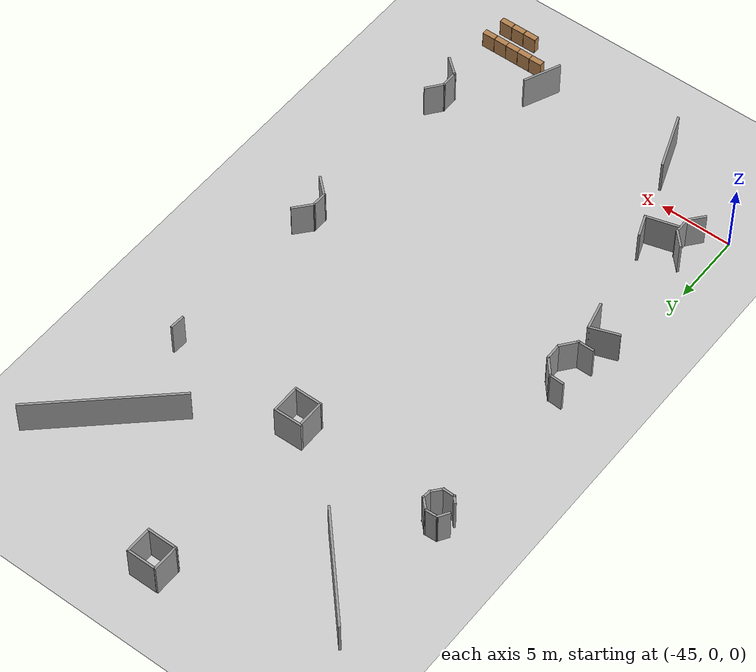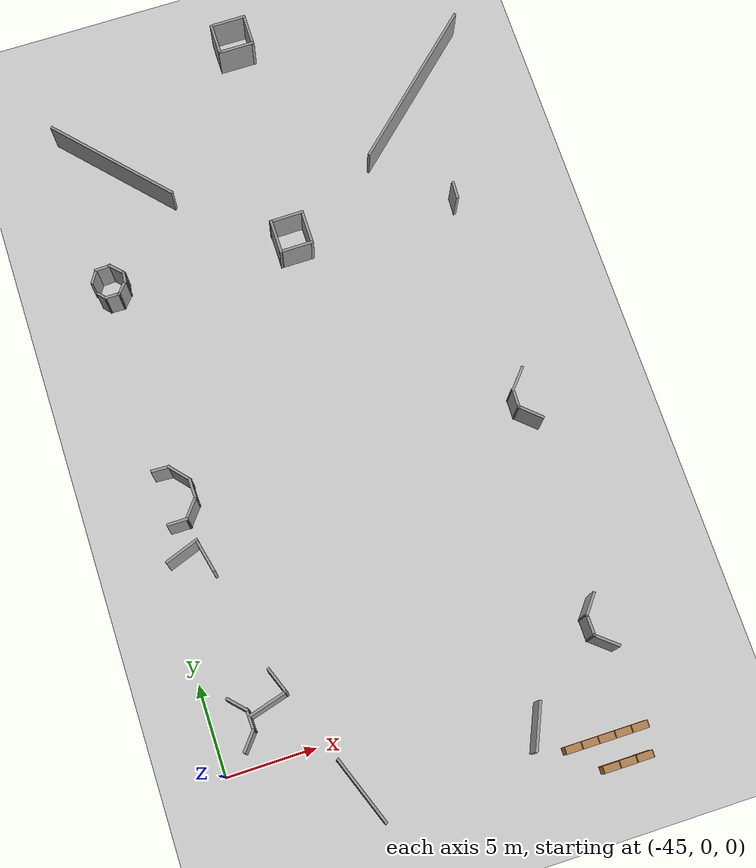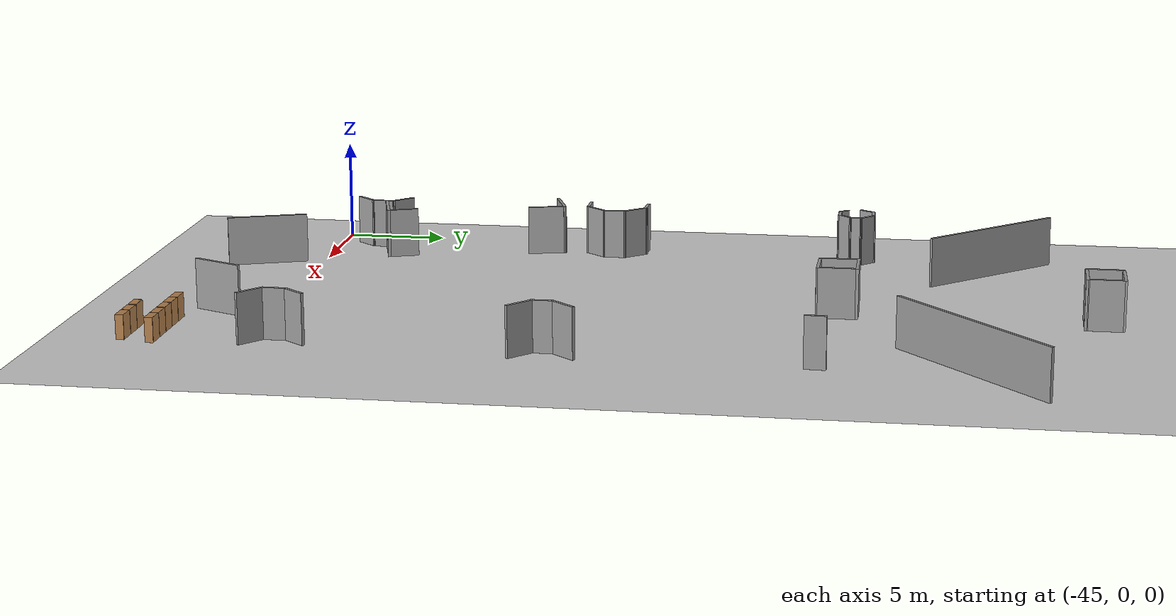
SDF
<sdf version="1.6">
 <world name="default">
  <model name="ground_plane">
   <static>1</static>
   <link name="link">
    <collision name="collision">
     <geometry><plane><normal>0 0 1</normal><size>100 100</size></plane></geometry>
     <surface><friction><ode><mu>100</mu><mu2>50</mu2></ode></friction></surface>
    </collision>
    <visual name="visual">
     <cast_shadows>0</cast_shadows>
     <geometry><plane><normal>0 0 1</normal><size>100 100</size></plane></geometry>
     <material>
      <script><uri>file://media/materials/scripts/gazebo.material</uri><name>Gazebo/Grey</name></script>
     </material>
    </visual>
   </link>
  </model>
  <model name="mall_new_reduce_size">
   <pose>-6.8092 7.5529 0 0 -0 0</pose>
   <link name="Wall_106">
    <collision name="Wall_106_Collision">
     <geometry><box><size>0.88293 0.15 2.5</size></box></geometry>
     <pose>0 0 1.25 0 -0 0</pose>
    </collision>
    <visual name="Wall_106_Visual">
     <pose>0 0 1.25 0 -0 0</pose>
     <geometry><box><size>0.88293 0.15 2.5</size></box></geometry>
     <material>
      <script><uri>file://media/materials/scripts/gazebo.material</uri><name>Gazebo/Grey</name></script>
      <ambient>1 1 1 1</ambient>
     </material>
     <meta><layer>0</layer></meta>
    </visual>
    <pose>-37.2247 20.3731 0 0 -0 1.00343</pose>
   </link>
   <link name="Wall_107">
    <collision name="Wall_107_Collision">
     <geometry><box><size>0.940533 0.15 2.5</size></box></geometry>
     <pose>0 0 1.25 0 -0 0</pose>
    </collision>
    <visual name="Wall_107_Visual">
     <pose>0 0 1.25 0 -0 0</pose>
     <geometry><box><size>0.940533 0.15 2.5</size></box></geometry>
     <material>
      <script><uri>file://media/materials/scripts/gazebo.material</uri><name>Gazebo/Grey</name></script>
      <ambient>1 1 1 1</ambient>
     </material>
     <meta><layer>0</layer></meta>
    </visual>
    <pose>-36.633 20.7072 0 0 -0 0.04939</pose>
   </link>
   <link name="Wall_108">
    <collision name="Wall_108_Collision">
     <geometry><box><size>1.04338 0.15 2.5</size></box></geometry>
     <pose>0 0 1.25 0 -0 0</pose>
    </collision>
    <visual name="Wall_108_Visual">
     <pose>0 0 1.25 0 -0 0</pose>
     <geometry><box><size>1.04338 0.15 2.5</size></box></geometry>
     <material>
      <script><uri>file://media/materials/scripts/gazebo.material</uri><name>Gazebo/Grey</name></script>
      <ambient>1 1 1 1</ambient>
     </material>
     <meta><layer>0</layer></meta>
    </visual>
    <pose>-35.9265 20.4122 0 0 -0 -0.780985</pose>
   </link>
   <link name="Wall_109">
    <collision name="Wall_109_Collision">
     <geometry><box><size>0.676427 0.15 2.5</size></box></geometry>
     <pose>0 0 1.25 0 -0 0</pose>
    </collision>
    <visual name="Wall_109_Visual">
     <pose>0 0 1.25 0 -0 0</pose>
     <geometry><box><size>0.676427 0.15 2.5</size></box></geometry>
     <material>
      <script><uri>file://media/materials/scripts/gazebo.material</uri><name>Gazebo/Grey</name></script>
      <ambient>1 1 1 1</ambient>
     </material>
     <meta><layer>0</layer></meta>
    </visual>
    <pose>-35.6455 19.8364 0 0 -0 -1.68757</pose>
   </link>
   <link name="Wall_110">
    <collision name="Wall_110_Collision">
     <geometry><box><size>0.945582 0.15 2.5</size></box></geometry>
     <pose>0 0 1.25 0 -0 0</pose>
    </collision>
    <visual name="Wall_110_Visual">
     <pose>0 0 1.25 0 -0 0</pose>
     <geometry><box><size>0.945582 0.15 2.5</size></box></geometry>
     <material>
      <script><uri>file://media/materials/scripts/gazebo.material</uri><name>Gazebo/Grey</name></script>
      <ambient>1 1 1 1</ambient>
     </material>
     <meta><layer>0</layer></meta>
    </visual>
    <pose>-35.9305 19.2738 0 0 -0 -2.28278</pose>
   </link>
   <link name="Wall_111">
    <collision name="Wall_111_Collision">
     <geometry><box><size>0.906136 0.15 2.5</size></box></geometry>
     <pose>0 0 1.25 0 -0 0</pose>
    </collision>
    <visual name="Wall_111_Visual">
     <pose>0 0 1.25 0 -0 0</pose>
     <geometry><box><size>0.906136 0.15 2.5</size></box></geometry>
     <material>
      <script><uri>file://media/materials/scripts/gazebo.material</uri><name>Gazebo/Grey</name></script>
      <ambient>1 1 1 1</ambient>
     </material>
     <meta><layer>0</layer></meta>
    </visual>
    <pose>-36.5684 18.981 0 0 -0 3.13422</pose>
   </link>
   <link name="Wall_112">
    <collision name="Wall_112_Collision">
     <geometry><box><size>0.599997 0.15 2.5</size></box></geometry>
     <pose>0 0 1.25 0 -0 0</pose>
    </collision>
    <visual name="Wall_112_Visual">
     <pose>0 0 1.25 0 -0 0</pose>
     <geometry><box><size>0.599997 0.15 2.5</size></box></geometry>
     <material>
      <script><uri>file://media/materials/scripts/gazebo.material</uri><name>Gazebo/Grey</name></script>
      <ambient>1 1 1 1</ambient>
     </material>
     <meta><layer>0</layer></meta>
    </visual>
    <pose>-37.1032 19.1505 0 0 -0 2.30701</pose>
   </link>
   <link name="Wall_120">
    <collision name="Wall_120_Collision">
     <geometry><box><size>2 0.15 2.5</size></box></geometry>
     <pose>0 0 1.25 0 -0 0</pose>
    </collision>
    <visual name="Wall_120_Visual">
     <pose>0 0 1.25 0 -0 0</pose>
     <geometry><box><size>2 0.15 2.5</size></box></geometry>
     <material>
      <script><uri>file://media/materials/scripts/gazebo.material</uri><name>Gazebo/Grey</name></script>
      <ambient>1 1 1 1</ambient>
     </material>
     <meta><layer>0</layer></meta>
    </visual>
    <pose>-26.9558 19.541 0 0 -0 -1.5708</pose>
   </link>
   <link name="Wall_121">
    <collision name="Wall_121_Collision">
     <geometry><box><size>1.9668 0.15 2.5</size></box></geometry>
     <pose>0 0 1.25 0 -0 0</pose>
    </collision>
    <visual name="Wall_121_Visual">
     <pose>0 0 1.25 0 -0 0</pose>
     <geometry><box><size>1.9668 0.15 2.5</size></box></geometry>
     <material>
      <script><uri>file://media/materials/scripts/gazebo.material</uri><name>Gazebo/Grey</name></script>
      <ambient>1 1 1 1</ambient>
     </material>
     <meta><layer>0</layer></meta>
    </visual>
    <pose>-26.0474 18.619 0 0 -0 0.003382</pose>
   </link>
   <link name="Wall_122">
    <collision name="Wall_122_Collision">
     <geometry><box><size>2.02653 0.15 2.5</size></box></geometry>
     <pose>0 0 1.25 0 -0 0</pose>
    </collision>
    <visual name="Wall_122_Visual">
     <pose>0 0 1.25 0 -0 0</pose>
     <geometry><box><size>2.02653 0.15 2.5</size></box></geometry>
     <material>
      <script><uri>file://media/materials/scripts/gazebo.material</uri><name>Gazebo/Grey</name></script>
      <ambient>1 1 1 1</ambient>
     </material>
     <meta><layer>0</layer></meta>
    </visual>
    <pose>-25.1383 19.554 0 0 -0 1.57003</pose>
   </link>
   <link name="Wall_123">
    <collision name="Wall_123_Collision">
     <geometry><box><size>1.99983 0.15 2.5</size></box></geometry>
     <pose>0 0 1.25 0 -0 0</pose>
    </collision>
    <visual name="Wall_123_Visual">
     <pose>0 0 1.25 0 -0 0</pose>
     <geometry><box><size>1.99983 0.15 2.5</size></box></geometry>
     <material>
      <script><uri>file://media/materials/scripts/gazebo.material</uri><name>Gazebo/Grey</name></script>
      <ambient>1 1 1 1</ambient>
     </material>
     <meta><layer>0</layer></meta>
    </visual>
    <pose>-26.056 20.4954 0 0 -0 -3.12426</pose>
   </link>
   <link name="Wall_23">
    <collision name="Wall_23_Collision">
     <geometry><box><size>8.04183 0.15 2.5</size></box></geometry>
     <pose>0 0 1.25 0 -0 0</pose>
    </collision>
    <visual name="Wall_23_Visual">
     <pose>0 0 1.25 0 -0 0</pose>
     <geometry><box><size>8.04183 0.15 2.5</size></box></geometry>
     <material>
      <script><uri>file://media/materials/scripts/gazebo.material</uri><name>Gazebo/Grey</name></script>
      <ambient>1 1 1 1</ambient>
     </material>
     <meta><layer>0</layer></meta>
    </visual>
    <pose>-34.4403 26.7968 0 0 -0 -0.828664</pose>
   </link>
   <link name="Wall_304">
    <collision name="Wall_304_Collision">
     <geometry><box><size>1.52701 0.15 2.5</size></box></geometry>
     <pose>0 0 1.25 0 -0 0</pose>
    </collision>
    <visual name="Wall_304_Visual">
     <pose>0 0 1.25 0 -0 0</pose>
     <geometry><box><size>1.52701 0.15 2.5</size></box></geometry>
     <material>
      <script><uri>file://media/materials/scripts/gazebo.material</uri><name>Gazebo/Grey</name></script>
      <ambient>1 1 1 1</ambient>
     </material>
     <meta><layer>0</layer></meta>
    </visual>
    <pose>-17.2005 -7.03707 0 0 -0 2.45115</pose>
   </link>
   <link name="Wall_305">
    <collision name="Wall_305_Collision">
     <geometry><box><size>1.2495 0.15 2.5</size></box></geometry>
     <pose>0 0 1.25 0 -0 0</pose>
    </collision>
    <visual name="Wall_305_Visual">
     <pose>0 0 1.25 0 -0 0</pose>
     <geometry><box><size>1.2495 0.15 2.5</size></box></geometry>
     <material>
      <script><uri>file://media/materials/scripts/gazebo.material</uri><name>Gazebo/Grey</name></script>
      <ambient>1 1 1 1</ambient>
     </material>
     <meta><layer>0</layer></meta>
    </visual>
    <pose>-17.7276 -6.04885 0 0 -0 1.57925</pose>
   </link>
   <link name="Wall_306">
    <collision name="Wall_306_Collision">
     <geometry><box><size>1.3668 0.15 2.5</size></box></geometry>
     <pose>0 0 1.25 0 -0 0</pose>
    </collision>
    <visual name="Wall_306_Visual">
     <pose>0 0 1.25 0 -0 0</pose>
     <geometry><box><size>1.3668 0.15 2.5</size></box></geometry>
     <material>
      <script><uri>file://media/materials/scripts/gazebo.material</uri><name>Gazebo/Grey</name></script>
      <ambient>1 1 1 1</ambient>
     </material>
     <meta><layer>0</layer></meta>
    </visual>
    <pose>-17.3575 -5.01145 0 0 -0 0.907215</pose>
   </link>
   <link name="Wall_309">
    <collision name="Wall_309_Collision">
     <geometry><box><size>2.66375 0.15 2.5</size></box></geometry>
     <pose>0 0 1.25 0 -0 0</pose>
    </collision>
    <visual name="Wall_309_Visual">
     <pose>0 0 1.25 0 -0 0</pose>
     <geometry><box><size>2.66375 0.15 2.5</size></box></geometry>
     <material>
      <script><uri>file://media/materials/scripts/gazebo.material</uri><name>Gazebo/Grey</name></script>
      <ambient>1 1 1 1</ambient>
     </material>
     <meta><layer>0</layer></meta>
    </visual>
    <pose>-22.0492 -10.0757 0 0 -0 1.15356</pose>
   </link>
   <link name="Wall_317">
    <collision name="Wall_317_Collision">
     <geometry><box><size>4.0797 0.15 2.5</size></box></geometry>
     <pose>0 0 1.25 0 -0 0</pose>
    </collision>
    <visual name="Wall_317_Visual">
     <pose>0 0 1.25 0 -0 0</pose>
     <geometry><box><size>4.0797 0.15 2.5</size></box></geometry>
     <material>
      <script><uri>file://media/materials/scripts/gazebo.material</uri><name>Gazebo/Grey</name></script>
      <ambient>1 1 1 1</ambient>
     </material>
     <meta><layer>0</layer></meta>
    </visual>
    <pose>-31.6512 -10.3768 0 0 -0 -1.21551</pose>
   </link>
   <link name="Wall_335">
    <collision name="Wall_335_Collision">
     <geometry><box><size>1.56516 0.15 2.5</size></box></geometry>
     <pose>0 0 1.25 0 -0 0</pose>
    </collision>
    <visual name="Wall_335_Visual">
     <pose>0 0 1.25 0 -0 0</pose>
     <geometry><box><size>1.56516 0.15 2.5</size></box></geometry>
     <material>
      <script><uri>file://media/materials/scripts/gazebo.material</uri><name>Gazebo/Grey</name></script>
      <ambient>1 1 1 1</ambient>
     </material>
     <meta><layer>0</layer></meta>
    </visual>
    <pose>-16.8295 5.70779 0 0 -0 2.41041</pose>
   </link>
   <link name="Wall_336">
    <collision name="Wall_336_Collision">
     <geometry><box><size>1.15225 0.15 2.5</size></box></geometry>
     <pose>0 0 1.25 0 -0 0</pose>
    </collision>
    <visual name="Wall_336_Visual">
     <pose>0 0 1.25 0 -0 0</pose>
     <geometry><box><size>1.15225 0.15 2.5</size></box></geometry>
     <material>
      <script><uri>file://media/materials/scripts/gazebo.material</uri><name>Gazebo/Grey</name></script>
      <ambient>1 1 1 1</ambient>
     </material>
     <meta><layer>0</layer></meta>
    </visual>
    <pose>-17.3514 6.67174 0 0 -0 1.56118</pose>
   </link>
   <link name="Wall_337">
    <collision name="Wall_337_Collision">
     <geometry><box><size>1.51537 0.15 2.5</size></box></geometry>
     <pose>0 0 1.25 0 -0 0</pose>
    </collision>
    <visual name="Wall_337_Visual">
     <pose>0 0 1.25 0 -0 0</pose>
     <geometry><box><size>1.51537 0.15 2.5</size></box></geometry>
     <material>
      <script><uri>file://media/materials/scripts/gazebo.material</uri><name>Gazebo/Grey</name></script>
      <ambient>1 1 1 1</ambient>
     </material>
     <meta><layer>0</layer></meta>
    </visual>
    <pose>-16.9005 7.68 0 0 -0 0.858721</pose>
   </link>
   <link name="Wall_340">
    <collision name="Wall_340_Collision">
     <geometry><box><size>1.61603 0.15 2.5</size></box></geometry>
     <pose>0 0 1.25 0 -0 0</pose>
    </collision>
    <visual name="Wall_340_Visual">
     <pose>0 0 1.25 0 -0 0</pose>
     <geometry><box><size>1.61603 0.15 2.5</size></box></geometry>
     <material>
      <script><uri>file://media/materials/scripts/gazebo.material</uri><name>Gazebo/Grey</name></script>
      <ambient>1 1 1 1</ambient>
     </material>
     <meta><layer>0</layer></meta>
    </visual>
    <pose>-34.1129 -3.77256 0 0 -0 -1.20963</pose>
   </link>
   <link name="Wall_341">
    <collision name="Wall_341_Collision">
     <geometry><box><size>2.32014 0.15 2.5</size></box></geometry>
     <pose>0 0 1.25 0 -0 0</pose>
    </collision>
    <visual name="Wall_341_Visual">
     <pose>0 0 1.25 0 -0 0</pose>
     <geometry><box><size>2.32014 0.15 2.5</size></box></geometry>
     <material>
      <script><uri>file://media/materials/scripts/gazebo.material</uri><name>Gazebo/Grey</name></script>
      <ambient>1 1 1 1</ambient>
     </material>
     <meta><layer>0</layer></meta>
    </visual>
    <pose>-34.8895 -4.75363 0 0 -0 -2.86593</pose>
   </link>
   <link name="Wall_345">
    <collision name="Wall_345_Collision">
     <geometry><box><size>1.30987 0.15 2.5</size></box></geometry>
     <pose>0 0 1.25 0 -0 0</pose>
    </collision>
    <visual name="Wall_345_Visual">
     <pose>0 0 1.25 0 -0 0</pose>
     <geometry><box><size>1.30987 0.15 2.5</size></box></geometry>
     <material>
      <script><uri>file://media/materials/scripts/gazebo.material</uri><name>Gazebo/Grey</name></script>
      <ambient>1 1 1 1</ambient>
     </material>
     <meta><layer>0</layer></meta>
    </visual>
    <pose>-36.4425 -4.29785 0 0 -0 -0.805961</pose>
   </link>
   <link name="Wall_346">
    <collision name="Wall_346_Collision">
     <geometry><box><size>1.24209 0.15 2.5</size></box></geometry>
     <pose>0 0 1.25 0 -0 0</pose>
    </collision>
    <visual name="Wall_346_Visual">
     <pose>0 0 1.25 0 -0 0</pose>
     <geometry><box><size>1.24209 0.15 2.5</size></box></geometry>
     <material>
      <script><uri>file://media/materials/scripts/gazebo.material</uri><name>Gazebo/Grey</name></script>
      <ambient>1 1 1 1</ambient>
     </material>
     <meta><layer>0</layer></meta>
    </visual>
    <pose>-36.0325 -5.24519 0 0 -0 -1.53991</pose>
   </link>
   <link name="Wall_347">
    <collision name="Wall_347_Collision">
     <geometry><box><size>1.31923 0.15 2.5</size></box></geometry>
     <pose>0 0 1.25 0 -0 0</pose>
    </collision>
    <visual name="Wall_347_Visual">
     <pose>0 0 1.25 0 -0 0</pose>
     <geometry><box><size>1.31923 0.15 2.5</size></box></geometry>
     <material>
      <script><uri>file://media/materials/scripts/gazebo.material</uri><name>Gazebo/Grey</name></script>
      <ambient>1 1 1 1</ambient>
     </material>
     <meta><layer>0</layer></meta>
    </visual>
    <pose>-36.396 -6.24199 0 0 -0 -2.26043</pose>
   </link>
   <link name="Wall_354">
    <collision name="Wall_354_Collision">
     <geometry><box><size>2.05857 0.15 2.5</size></box></geometry>
     <pose>0 0 1.25 0 -0 0</pose>
    </collision>
    <visual name="Wall_354_Visual">
     <pose>0 0 1.25 0 -0 0</pose>
     <geometry><box><size>2.05857 0.15 2.5</size></box></geometry>
     <material>
      <script><uri>file://media/materials/scripts/gazebo.material</uri><name>Gazebo/Grey</name></script>
      <ambient>1 1 1 1</ambient>
     </material>
     <meta><layer>0</layer></meta>
    </visual>
    <pose>-36.9144 4.20159 0 0 -0 0.346103</pose>
   </link>
   <link name="Wall_355">
    <collision name="Wall_355_Collision">
     <geometry><box><size>1.98834 0.15 2.5</size></box></geometry>
     <pose>0 0 1.25 0 -0 0</pose>
    </collision>
    <visual name="Wall_355_Visual">
     <pose>0 0 1.25 0 -0 0</pose>
     <geometry><box><size>1.98834 0.15 2.5</size></box></geometry>
     <material>
      <script><uri>file://media/materials/scripts/gazebo.material</uri><name>Gazebo/Grey</name></script>
      <ambient>1 1 1 1</ambient>
     </material>
     <meta><layer>0</layer></meta>
    </visual>
    <pose>-35.8124 3.62071 0 0 -0 -1.34665</pose>
   </link>
   <link name="Wall_38">
    <collision name="Wall_38_Collision">
     <geometry><box><size>1.87759 0.15 2.5</size></box></geometry>
     <pose>0 0 1.25 0 -0 0</pose>
    </collision>
    <visual name="Wall_38_Visual">
     <pose>0 0 1.25 0 -0 0</pose>
     <geometry><box><size>1.87759 0.15 2.5</size></box></geometry>
     <material>
      <script><uri>file://media/materials/scripts/gazebo.material</uri><name>Gazebo/Grey</name></script>
      <ambient>1 1 1 1</ambient>
     </material>
     <meta><layer>0</layer></meta>
    </visual>
    <pose>-26.693 32.1923 0 0 -0 -1.57586</pose>
   </link>
   <link name="Wall_381">
    <collision name="Wall_381_Collision">
     <geometry><box><size>1.0607 0.15 2.5</size></box></geometry>
     <pose>0 0 1.25 0 -0 0</pose>
    </collision>
    <visual name="Wall_381_Visual">
     <pose>0 0 1.25 0 -0 0</pose>
     <geometry><box><size>1.0607 0.15 2.5</size></box></geometry>
     <material>
      <script><uri>file://media/materials/scripts/gazebo.material</uri><name>Gazebo/Grey</name></script>
      <ambient>1 1 1 1</ambient>
     </material>
     <meta><layer>0</layer></meta>
    </visual>
    <pose>-36.7557 8.79735 0 0 -0 -0.048953</pose>
   </link>
   <link name="Wall_382">
    <collision name="Wall_382_Collision">
     <geometry><box><size>1.48403 0.15 2.5</size></box></geometry>
     <pose>0 0 1.25 0 -0 0</pose>
    </collision>
    <visual name="Wall_382_Visual">
     <pose>0 0 1.25 0 -0 0</pose>
     <geometry><box><size>1.48403 0.15 2.5</size></box></geometry>
     <material>
      <script><uri>file://media/materials/scripts/gazebo.material</uri><name>Gazebo/Grey</name></script>
      <ambient>1 1 1 1</ambient>
     </material>
     <meta><layer>0</layer></meta>
    </visual>
    <pose>-35.8638 8.28201 0 0 -0 -0.857017</pose>
   </link>
   <link name="Wall_383">
    <collision name="Wall_383_Collision">
     <geometry><box><size>1.20072 0.15 2.5</size></box></geometry>
     <pose>0 0 1.25 0 -0 0</pose>
    </collision>
    <visual name="Wall_383_Visual">
     <pose>0 0 1.25 0 -0 0</pose>
     <geometry><box><size>1.20072 0.15 2.5</size></box></geometry>
     <material>
      <script><uri>file://media/materials/scripts/gazebo.material</uri><name>Gazebo/Grey</name></script>
      <ambient>1 1 1 1</ambient>
     </material>
     <meta><layer>0</layer></meta>
    </visual>
    <pose>-35.4271 7.25246 0 0 -0 -1.54957</pose>
   </link>
   <link name="Wall_384">
    <collision name="Wall_384_Collision">
     <geometry><box><size>1.37998 0.15 2.5</size></box></geometry>
     <pose>0 0 1.25 0 -0 0</pose>
    </collision>
    <visual name="Wall_384_Visual">
     <pose>0 0 1.25 0 -0 0</pose>
     <geometry><box><size>1.37998 0.15 2.5</size></box></geometry>
     <material>
      <script><uri>file://media/materials/scripts/gazebo.material</uri><name>Gazebo/Grey</name></script>
      <ambient>1 1 1 1</ambient>
     </material>
     <meta><layer>0</layer></meta>
    </visual>
    <pose>-35.8104 6.24615 0 0 -0 -2.24365</pose>
   </link>
   <link name="Wall_385">
    <collision name="Wall_385_Collision">
     <geometry><box><size>1.17938 0.15 2.5</size></box></geometry>
     <pose>0 0 1.25 0 -0 0</pose>
    </collision>
    <visual name="Wall_385_Visual">
     <pose>0 0 1.25 0 -0 0</pose>
     <geometry><box><size>1.17938 0.15 2.5</size></box></geometry>
     <material>
      <script><uri>file://media/materials/scripts/gazebo.material</uri><name>Gazebo/Grey</name></script>
      <ambient>1 1 1 1</ambient>
     </material>
     <meta><layer>0</layer></meta>
    </visual>
    <pose>-36.6967 5.7652 0 0 -0 3.14159</pose>
   </link>
   <link name="Wall_40">
    <collision name="Wall_40_Collision">
     <geometry><box><size>2.12677 0.15 2.5</size></box></geometry>
     <pose>0 0 1.25 0 -0 0</pose>
    </collision>
    <visual name="Wall_40_Visual">
     <pose>0 0 1.25 0 -0 0</pose>
     <geometry><box><size>2.12677 0.15 2.5</size></box></geometry>
     <material>
      <script><uri>file://media/materials/scripts/gazebo.material</uri><name>Gazebo/Grey</name></script>
      <ambient>1 1 1 1</ambient>
     </material>
     <meta><layer>0</layer></meta>
    </visual>
    <pose>-25.709 31.3193 0 0 -0 -0.000501</pose>
   </link>
   <link name="Wall_42">
    <collision name="Wall_42_Collision">
     <geometry><box><size>1.90642 0.15 2.5</size></box></geometry>
     <pose>0 0 1.25 0 -0 0</pose>
    </collision>
    <visual name="Wall_42_Visual">
     <pose>0 0 1.25 0 -0 0</pose>
     <geometry><box><size>1.90642 0.15 2.5</size></box></geometry>
     <material>
      <script><uri>file://media/materials/scripts/gazebo.material</uri><name>Gazebo/Grey</name></script>
      <ambient>1 1 1 1</ambient>
     </material>
     <meta><layer>0</layer></meta>
    </visual>
    <pose>-24.7208 32.1883 0 0 -0 1.57103</pose>
   </link>
   <link name="Wall_43">
    <collision name="Wall_43_Collision">
     <geometry><box><size>2 0.15 2.5</size></box></geometry>
     <pose>0 0 1.25 0 -0 0</pose>
    </collision>
    <visual name="Wall_43_Visual">
     <pose>0 0 1.25 0 -0 0</pose>
     <geometry><box><size>2 0.15 2.5</size></box></geometry>
     <material>
      <script><uri>file://media/materials/scripts/gazebo.material</uri><name>Gazebo/Grey</name></script>
      <ambient>1 1 1 1</ambient>
     </material>
     <meta><layer>0</layer></meta>
    </visual>
    <pose>-25.646 33.0752 0 0 -0 3.14159</pose>
   </link>
   <link name="Wall_57">
    <collision name="Wall_57_Collision">
     <geometry><box><size>10.1653 0.15 2.5</size></box></geometry>
     <pose>0 0 1.25 0 -0 0</pose>
    </collision>
    <visual name="Wall_57_Visual">
     <pose>0 0 1.25 0 -0 0</pose>
     <geometry><box><size>10.1653 0.15 2.5</size></box></geometry>
     <material>
      <script><uri>file://media/materials/scripts/gazebo.material</uri><name>Gazebo/Grey</name></script>
      <ambient>1 1 1 1</ambient>
     </material>
     <meta><layer>0</layer></meta>
    </visual>
    <pose>-16.7712 26.0648 0 0 -0 0.74156</pose>
   </link>
   <link name="Wall_72">
    <collision name="Wall_72_Collision">
     <geometry><box><size>1.02754 0.15 2.5</size></box></geometry>
     <pose>0 0 1.25 0 -0 0</pose>
    </collision>
    <visual name="Wall_72_Visual">
     <pose>0 0 1.25 0 -0 0</pose>
     <geometry><box><size>1.02754 0.15 2.5</size></box></geometry>
     <material>
      <script><uri>file://media/materials/scripts/gazebo.material</uri><name>Gazebo/Grey</name></script>
      <ambient>1 1 1 1</ambient>
     </material>
     <meta><layer>0</layer></meta>
    </visual>
    <pose>-16.5528 19.1394 0 0 -0 -1.62581</pose>
   </link>
   <static>1</static>
  </model>
  <model name="bookshelf">
   <static>1</static>
   <link name="link">
    <inertial><mass>1</mass></inertial>
    <collision name="back">
     <pose>0 0.005 0.6 0 -0 0</pose>
     <geometry><box><size>0.9 0.01 1.2</size></box></geometry>
    </collision>
    <visual name="visual1">
     <pose>0 0.005 0.6 0 -0 0</pose>
     <geometry><box><size>0.9 0.01 1.2</size></box></geometry>
     <material>
      <script><uri>file://media/materials/scripts/gazebo.material</uri><name>Gazebo/Wood</name></script>
     </material>
    </visual>
    <collision name="left_side">
     <pose>0.45 -0.195 0.6 0 -0 0</pose>
     <geometry><box><size>0.02 0.4 1.2</size></box></geometry>
    </collision>
    <visual name="visual2">
     <pose>0.45 -0.195 0.6 0 -0 0</pose>
     <geometry><box><size>0.02 0.4 1.2</size></box></geometry>
     <material>
      <script><uri>file://media/materials/scripts/gazebo.material</uri><name>Gazebo/Wood</name></script>
     </material>
    </visual>
    <collision name="right_side">
     <pose>-0.45 -0.195 0.6 0 -0 0</pose>
     <geometry><box><size>0.02 0.4 1.2</size></box></geometry>
    </collision>
    <visual name="visual3">
     <pose>-0.45 -0.195 0.6 0 -0 0</pose>
     <geometry><box><size>0.02 0.4 1.2</size></box></geometry>
     <material>
      <script><uri>file://media/materials/scripts/gazebo.material</uri><name>Gazebo/Wood</name></script>
     </material>
    </visual>
    <collision name="bottom">
     <pose>0 -0.195 0.03 0 -0 0</pose>
     <geometry><box><size>0.88 0.4 0.06</size></box></geometry>
    </collision>
    <visual name="visual4">
     <pose>0 -0.195 0.03 0 -0 0</pose>
     <geometry><box><size>0.88 0.4 0.06</size></box></geometry>
     <material>
      <script><uri>file://media/materials/scripts/gazebo.material</uri><name>Gazebo/Wood</name></script>
     </material>
    </visual>
    <collision name="top">
     <pose>0 -0.195 1.19 0 -0 0</pose>
     <geometry><box><size>0.88 0.4 0.02</size></box></geometry>
    </collision>
    <visual name="visual5">
     <pose>0 -0.195 1.19 0 -0 0</pose>
     <geometry><box><size>0.88 0.4 0.02</size></box></geometry>
     <material>
      <script><uri>file://media/materials/scripts/gazebo.material</uri><name>Gazebo/Wood</name></script>
     </material>
    </visual>
    <collision name="low_shelf">
     <pose>0 -0.195 0.43 0 -0 0</pose>
     <geometry><box><size>0.88 0.4 0.02</size></box></geometry>
    </collision>
    <visual name="visual6">
     <pose>0 -0.195 0.43 0 -0 0</pose>
     <geometry><box><size>0.88 0.4 0.02</size></box></geometry>
     <material>
      <script><uri>file://media/materials/scripts/gazebo.material</uri><name>Gazebo/Wood</name></script>
     </material>
    </visual>
    <collision name="high_shelf">
     <pose>0 -0.195 0.8 0 -0 0</pose>
     <geometry><box><size>0.88 0.4 0.02</size></box></geometry>
    </collision>
    <visual name="visual7">
     <pose>0 -0.195 0.8 0 -0 0</pose>
     <geometry><box><size>0.88 0.4 0.02</size></box></geometry>
     <material>
      <script><uri>file://media/materials/scripts/gazebo.material</uri><name>Gazebo/Wood</name></script>
     </material>
    </visual>
   </link>
   <pose>-25.7843 -5.44 0 0 -0 0</pose>
  </model>
  <model name="bookshelf_1">
   <static>1</static>
   <link name="link">
    <inertial><mass>1</mass></inertial>
    <collision name="back">
     <pose>0 0.005 0.6 0 -0 0</pose>
     <geometry><box><size>0.9 0.01 1.2</size></box></geometry>
    </collision>
    <visual name="visual1">
     <pose>0 0.005 0.6 0 -0 0</pose>
     <geometry><box><size>0.9 0.01 1.2</size></box></geometry>
     <material>
      <script><uri>file://media/materials/scripts/gazebo.material</uri><name>Gazebo/Wood</name></script>
     </material>
    </visual>
    <collision name="left_side">
     <pose>0.45 -0.195 0.6 0 -0 0</pose>
     <geometry><box><size>0.02 0.4 1.2</size></box></geometry>
    </collision>
    <visual name="visual2">
     <pose>0.45 -0.195 0.6 0 -0 0</pose>
     <geometry><box><size>0.02 0.4 1.2</size></box></geometry>
     <material>
      <script><uri>file://media/materials/scripts/gazebo.material</uri><name>Gazebo/Wood</name></script>
     </material>
    </visual>
    <collision name="right_side">
     <pose>-0.45 -0.195 0.6 0 -0 0</pose>
     <geometry><box><size>0.02 0.4 1.2</size></box></geometry>
    </collision>
    <visual name="visual3">
     <pose>-0.45 -0.195 0.6 0 -0 0</pose>
     <geometry><box><size>0.02 0.4 1.2</size></box></geometry>
     <material>
      <script><uri>file://media/materials/scripts/gazebo.material</uri><name>Gazebo/Wood</name></script>
     </material>
    </visual>
    <collision name="bottom">
     <pose>0 -0.195 0.03 0 -0 0</pose>
     <geometry><box><size>0.88 0.4 0.06</size></box></geometry>
    </collision>
    <visual name="visual4">
     <pose>0 -0.195 0.03 0 -0 0</pose>
     <geometry><box><size>0.88 0.4 0.06</size></box></geometry>
     <material>
      <script><uri>file://media/materials/scripts/gazebo.material</uri><name>Gazebo/Wood</name></script>
     </material>
    </visual>
    <collision name="top">
     <pose>0 -0.195 1.19 0 -0 0</pose>
     <geometry><box><size>0.88 0.4 0.02</size></box></geometry>
    </collision>
    <visual name="visual5">
     <pose>0 -0.195 1.19 0 -0 0</pose>
     <geometry><box><size>0.88 0.4 0.02</size></box></geometry>
     <material>
      <script><uri>file://media/materials/scripts/gazebo.material</uri><name>Gazebo/Wood</name></script>
     </material>
    </visual>
    <collision name="low_shelf">
     <pose>0 -0.195 0.43 0 -0 0</pose>
     <geometry><box><size>0.88 0.4 0.02</size></box></geometry>
    </collision>
    <visual name="visual6">
     <pose>0 -0.195 0.43 0 -0 0</pose>
     <geometry><box><size>0.88 0.4 0.02</size></box></geometry>
     <material>
      <script><uri>file://media/materials/scripts/gazebo.material</uri><name>Gazebo/Wood</name></script>
     </material>
    </visual>
    <collision name="high_shelf">
     <pose>0 -0.195 0.8 0 -0 0</pose>
     <geometry><box><size>0.88 0.4 0.02</size></box></geometry>
    </collision>
    <visual name="visual7">
     <pose>0 -0.195 0.8 0 -0 0</pose>
     <geometry><box><size>0.88 0.4 0.02</size></box></geometry>
     <material>
      <script><uri>file://media/materials/scripts/gazebo.material</uri><name>Gazebo/Wood</name></script>
     </material>
    </visual>
   </link>
   <pose>-23.9302 -5.43409 0 0 -0 0</pose>
  </model>
  <model name="bookshelf_13">
   <static>1</static>
   <link name="link">
    <inertial><mass>1</mass></inertial>
    <collision name="back">
     <pose>0 0.005 0.6 0 -0 0</pose>
     <geometry><box><size>0.9 0.01 1.2</size></box></geometry>
    </collision>
    <visual name="visual1">
     <pose>0 0.005 0.6 0 -0 0</pose>
     <geometry><box><size>0.9 0.01 1.2</size></box></geometry>
     <material>
      <script><uri>file://media/materials/scripts/gazebo.material</uri><name>Gazebo/Wood</name></script>
     </material>
    </visual>
    <collision name="left_side">
     <pose>0.45 -0.195 0.6 0 -0 0</pose>
     <geometry><box><size>0.02 0.4 1.2</size></box></geometry>
    </collision>
    <visual name="visual2">
     <pose>0.45 -0.195 0.6 0 -0 0</pose>
     <geometry><box><size>0.02 0.4 1.2</size></box></geometry>
     <material>
      <script><uri>file://media/materials/scripts/gazebo.material</uri><name>Gazebo/Wood</name></script>
     </material>
    </visual>
    <collision name="right_side">
     <pose>-0.45 -0.195 0.6 0 -0 0</pose>
     <geometry><box><size>0.02 0.4 1.2</size></box></geometry>
    </collision>
    <visual name="visual3">
     <pose>-0.45 -0.195 0.6 0 -0 0</pose>
     <geometry><box><size>0.02 0.4 1.2</size></box></geometry>
     <material>
      <script><uri>file://media/materials/scripts/gazebo.material</uri><name>Gazebo/Wood</name></script>
     </material>
    </visual>
    <collision name="bottom">
     <pose>0 -0.195 0.03 0 -0 0</pose>
     <geometry><box><size>0.88 0.4 0.06</size></box></geometry>
    </collision>
    <visual name="visual4">
     <pose>0 -0.195 0.03 0 -0 0</pose>
     <geometry><box><size>0.88 0.4 0.06</size></box></geometry>
     <material>
      <script><uri>file://media/materials/scripts/gazebo.material</uri><name>Gazebo/Wood</name></script>
     </material>
    </visual>
    <collision name="top">
     <pose>0 -0.195 1.19 0 -0 0</pose>
     <geometry><box><size>0.88 0.4 0.02</size></box></geometry>
    </collision>
    <visual name="visual5">
     <pose>0 -0.195 1.19 0 -0 0</pose>
     <geometry><box><size>0.88 0.4 0.02</size></box></geometry>
     <material>
      <script><uri>file://media/materials/scripts/gazebo.material</uri><name>Gazebo/Wood</name></script>
     </material>
    </visual>
    <collision name="low_shelf">
     <pose>0 -0.195 0.43 0 -0 0</pose>
     <geometry><box><size>0.88 0.4 0.02</size></box></geometry>
    </collision>
    <visual name="visual6">
     <pose>0 -0.195 0.43 0 -0 0</pose>
     <geometry><box><size>0.88 0.4 0.02</size></box></geometry>
     <material>
      <script><uri>file://media/materials/scripts/gazebo.material</uri><name>Gazebo/Wood</name></script>
     </material>
    </visual>
    <collision name="high_shelf">
     <pose>0 -0.195 0.8 0 -0 0</pose>
     <geometry><box><size>0.88 0.4 0.02</size></box></geometry>
    </collision>
    <visual name="visual7">
     <pose>0 -0.195 0.8 0 -0 0</pose>
     <geometry><box><size>0.88 0.4 0.02</size></box></geometry>
     <material>
      <script><uri>file://media/materials/scripts/gazebo.material</uri><name>Gazebo/Wood</name></script>
     </material>
    </visual>
   </link>
   <pose>-24.8605 -5.43645 0 0 -0 0</pose>
  </model>
  <model name="bookshelf_36">
   <static>1</static>
   <link name="link">
    <inertial><mass>1</mass></inertial>
    <collision name="back">
     <pose>0 0.005 0.6 0 -0 0</pose>
     <geometry><box><size>0.9 0.01 1.2</size></box></geometry>
    </collision>
    <visual name="visual1">
     <pose>0 0.005 0.6 0 -0 0</pose>
     <geometry><box><size>0.9 0.01 1.2</size></box></geometry>
     <material>
      <script><uri>file://media/materials/scripts/gazebo.material</uri><name>Gazebo/Wood</name></script>
     </material>
    </visual>
    <collision name="left_side">
     <pose>0.45 -0.195 0.6 0 -0 0</pose>
     <geometry><box><size>0.02 0.4 1.2</size></box></geometry>
    </collision>
    <visual name="visual2">
     <pose>0.45 -0.195 0.6 0 -0 0</pose>
     <geometry><box><size>0.02 0.4 1.2</size></box></geometry>
     <material>
      <script><uri>file://media/materials/scripts/gazebo.material</uri><name>Gazebo/Wood</name></script>
     </material>
    </visual>
    <collision name="right_side">
     <pose>-0.45 -0.195 0.6 0 -0 0</pose>
     <geometry><box><size>0.02 0.4 1.2</size></box></geometry>
    </collision>
    <visual name="visual3">
     <pose>-0.45 -0.195 0.6 0 -0 0</pose>
     <geometry><box><size>0.02 0.4 1.2</size></box></geometry>
     <material>
      <script><uri>file://media/materials/scripts/gazebo.material</uri><name>Gazebo/Wood</name></script>
     </material>
    </visual>
    <collision name="bottom">
     <pose>0 -0.195 0.03 0 -0 0</pose>
     <geometry><box><size>0.88 0.4 0.06</size></box></geometry>
    </collision>
    <visual name="visual4">
     <pose>0 -0.195 0.03 0 -0 0</pose>
     <geometry><box><size>0.88 0.4 0.06</size></box></geometry>
     <material>
      <script><uri>file://media/materials/scripts/gazebo.material</uri><name>Gazebo/Wood</name></script>
     </material>
    </visual>
    <collision name="top">
     <pose>0 -0.195 1.19 0 -0 0</pose>
     <geometry><box><size>0.88 0.4 0.02</size></box></geometry>
    </collision>
    <visual name="visual5">
     <pose>0 -0.195 1.19 0 -0 0</pose>
     <geometry><box><size>0.88 0.4 0.02</size></box></geometry>
     <material>
      <script><uri>file://media/materials/scripts/gazebo.material</uri><name>Gazebo/Wood</name></script>
     </material>
    </visual>
    <collision name="low_shelf">
     <pose>0 -0.195 0.43 0 -0 0</pose>
     <geometry><box><size>0.88 0.4 0.02</size></box></geometry>
    </collision>
    <visual name="visual6">
     <pose>0 -0.195 0.43 0 -0 0</pose>
     <geometry><box><size>0.88 0.4 0.02</size></box></geometry>
     <material>
      <script><uri>file://media/materials/scripts/gazebo.material</uri><name>Gazebo/Wood</name></script>
     </material>
    </visual>
    <collision name="high_shelf">
     <pose>0 -0.195 0.8 0 -0 0</pose>
     <geometry><box><size>0.88 0.4 0.02</size></box></geometry>
    </collision>
    <visual name="visual7">
     <pose>0 -0.195 0.8 0 -0 0</pose>
     <geometry><box><size>0.88 0.4 0.02</size></box></geometry>
     <material>
      <script><uri>file://media/materials/scripts/gazebo.material</uri><name>Gazebo/Wood</name></script>
     </material>
    </visual>
   </link>
   <pose>-27.3338 -3.93003 0 0 -0 0</pose>
  </model>
  <model name="bookshelf_37">
   <static>1</static>
   <link name="link">
    <inertial><mass>1</mass></inertial>
    <collision name="back">
     <pose>0 0.005 0.6 0 -0 0</pose>
     <geometry><box><size>0.9 0.01 1.2</size></box></geometry>
    </collision>
    <visual name="visual1">
     <pose>0 0.005 0.6 0 -0 0</pose>
     <geometry><box><size>0.9 0.01 1.2</size></box></geometry>
     <material>
      <script><uri>file://media/materials/scripts/gazebo.material</uri><name>Gazebo/Wood</name></script>
     </material>
    </visual>
    <collision name="left_side">
     <pose>0.45 -0.195 0.6 0 -0 0</pose>
     <geometry><box><size>0.02 0.4 1.2</size></box></geometry>
    </collision>
    <visual name="visual2">
     <pose>0.45 -0.195 0.6 0 -0 0</pose>
     <geometry><box><size>0.02 0.4 1.2</size></box></geometry>
     <material>
      <script><uri>file://media/materials/scripts/gazebo.material</uri><name>Gazebo/Wood</name></script>
     </material>
    </visual>
    <collision name="right_side">
     <pose>-0.45 -0.195 0.6 0 -0 0</pose>
     <geometry><box><size>0.02 0.4 1.2</size></box></geometry>
    </collision>
    <visual name="visual3">
     <pose>-0.45 -0.195 0.6 0 -0 0</pose>
     <geometry><box><size>0.02 0.4 1.2</size></box></geometry>
     <material>
      <script><uri>file://media/materials/scripts/gazebo.material</uri><name>Gazebo/Wood</name></script>
     </material>
    </visual>
    <collision name="bottom">
     <pose>0 -0.195 0.03 0 -0 0</pose>
     <geometry><box><size>0.88 0.4 0.06</size></box></geometry>
    </collision>
    <visual name="visual4">
     <pose>0 -0.195 0.03 0 -0 0</pose>
     <geometry><box><size>0.88 0.4 0.06</size></box></geometry>
     <material>
      <script><uri>file://media/materials/scripts/gazebo.material</uri><name>Gazebo/Wood</name></script>
     </material>
    </visual>
    <collision name="top">
     <pose>0 -0.195 1.19 0 -0 0</pose>
     <geometry><box><size>0.88 0.4 0.02</size></box></geometry>
    </collision>
    <visual name="visual5">
     <pose>0 -0.195 1.19 0 -0 0</pose>
     <geometry><box><size>0.88 0.4 0.02</size></box></geometry>
     <material>
      <script><uri>file://media/materials/scripts/gazebo.material</uri><name>Gazebo/Wood</name></script>
     </material>
    </visual>
    <collision name="low_shelf">
     <pose>0 -0.195 0.43 0 -0 0</pose>
     <geometry><box><size>0.88 0.4 0.02</size></box></geometry>
    </collision>
    <visual name="visual6">
     <pose>0 -0.195 0.43 0 -0 0</pose>
     <geometry><box><size>0.88 0.4 0.02</size></box></geometry>
     <material>
      <script><uri>file://media/materials/scripts/gazebo.material</uri><name>Gazebo/Wood</name></script>
     </material>
    </visual>
    <collision name="high_shelf">
     <pose>0 -0.195 0.8 0 -0 0</pose>
     <geometry><box><size>0.88 0.4 0.02</size></box></geometry>
    </collision>
    <visual name="visual7">
     <pose>0 -0.195 0.8 0 -0 0</pose>
     <geometry><box><size>0.88 0.4 0.02</size></box></geometry>
     <material>
      <script><uri>file://media/materials/scripts/gazebo.material</uri><name>Gazebo/Wood</name></script>
     </material>
    </visual>
   </link>
   <pose>-26.4094 -3.93233 0 0 -0 0</pose>
  </model>
  <model name="bookshelf_38">
   <static>1</static>
   <link name="link">
    <inertial><mass>1</mass></inertial>
    <collision name="back">
     <pose>0 0.005 0.6 0 -0 0</pose>
     <geometry><box><size>0.9 0.01 1.2</size></box></geometry>
    </collision>
    <visual name="visual1">
     <pose>0 0.005 0.6 0 -0 0</pose>
     <geometry><box><size>0.9 0.01 1.2</size></box></geometry>
     <material>
      <script><uri>file://media/materials/scripts/gazebo.material</uri><name>Gazebo/Wood</name></script>
     </material>
    </visual>
    <collision name="left_side">
     <pose>0.45 -0.195 0.6 0 -0 0</pose>
     <geometry><box><size>0.02 0.4 1.2</size></box></geometry>
    </collision>
    <visual name="visual2">
     <pose>0.45 -0.195 0.6 0 -0 0</pose>
     <geometry><box><size>0.02 0.4 1.2</size></box></geometry>
     <material>
      <script><uri>file://media/materials/scripts/gazebo.material</uri><name>Gazebo/Wood</name></script>
     </material>
    </visual>
    <collision name="right_side">
     <pose>-0.45 -0.195 0.6 0 -0 0</pose>
     <geometry><box><size>0.02 0.4 1.2</size></box></geometry>
    </collision>
    <visual name="visual3">
     <pose>-0.45 -0.195 0.6 0 -0 0</pose>
     <geometry><box><size>0.02 0.4 1.2</size></box></geometry>
     <material>
      <script><uri>file://media/materials/scripts/gazebo.material</uri><name>Gazebo/Wood</name></script>
     </material>
    </visual>
    <collision name="bottom">
     <pose>0 -0.195 0.03 0 -0 0</pose>
     <geometry><box><size>0.88 0.4 0.06</size></box></geometry>
    </collision>
    <visual name="visual4">
     <pose>0 -0.195 0.03 0 -0 0</pose>
     <geometry><box><size>0.88 0.4 0.06</size></box></geometry>
     <material>
      <script><uri>file://media/materials/scripts/gazebo.material</uri><name>Gazebo/Wood</name></script>
     </material>
    </visual>
    <collision name="top">
     <pose>0 -0.195 1.19 0 -0 0</pose>
     <geometry><box><size>0.88 0.4 0.02</size></box></geometry>
    </collision>
    <visual name="visual5">
     <pose>0 -0.195 1.19 0 -0 0</pose>
     <geometry><box><size>0.88 0.4 0.02</size></box></geometry>
     <material>
      <script><uri>file://media/materials/scripts/gazebo.material</uri><name>Gazebo/Wood</name></script>
     </material>
    </visual>
    <collision name="low_shelf">
     <pose>0 -0.195 0.43 0 -0 0</pose>
     <geometry><box><size>0.88 0.4 0.02</size></box></geometry>
    </collision>
    <visual name="visual6">
     <pose>0 -0.195 0.43 0 -0 0</pose>
     <geometry><box><size>0.88 0.4 0.02</size></box></geometry>
     <material>
      <script><uri>file://media/materials/scripts/gazebo.material</uri><name>Gazebo/Wood</name></script>
     </material>
    </visual>
    <collision name="high_shelf">
     <pose>0 -0.195 0.8 0 -0 0</pose>
     <geometry><box><size>0.88 0.4 0.02</size></box></geometry>
    </collision>
    <visual name="visual7">
     <pose>0 -0.195 0.8 0 -0 0</pose>
     <geometry><box><size>0.88 0.4 0.02</size></box></geometry>
     <material>
      <script><uri>file://media/materials/scripts/gazebo.material</uri><name>Gazebo/Wood</name></script>
     </material>
    </visual>
   </link>
   <pose>-25.4897 -3.93315 0 0 -0 0</pose>
  </model>
  <model name="bookshelf_39">
   <static>1</static>
   <link name="link">
    <inertial><mass>1</mass></inertial>
    <collision name="back">
     <pose>0 0.005 0.6 0 -0 0</pose>
     <geometry><box><size>0.9 0.01 1.2</size></box></geometry>
    </collision>
    <visual name="visual1">
     <pose>0 0.005 0.6 0 -0 0</pose>
     <geometry><box><size>0.9 0.01 1.2</size></box></geometry>
     <material>
      <script><uri>file://media/materials/scripts/gazebo.material</uri><name>Gazebo/Wood</name></script>
     </material>
    </visual>
    <collision name="left_side">
     <pose>0.45 -0.195 0.6 0 -0 0</pose>
     <geometry><box><size>0.02 0.4 1.2</size></box></geometry>
    </collision>
    <visual name="visual2">
     <pose>0.45 -0.195 0.6 0 -0 0</pose>
     <geometry><box><size>0.02 0.4 1.2</size></box></geometry>
     <material>
      <script><uri>file://media/materials/scripts/gazebo.material</uri><name>Gazebo/Wood</name></script>
     </material>
    </visual>
    <collision name="right_side">
     <pose>-0.45 -0.195 0.6 0 -0 0</pose>
     <geometry><box><size>0.02 0.4 1.2</size></box></geometry>
    </collision>
    <visual name="visual3">
     <pose>-0.45 -0.195 0.6 0 -0 0</pose>
     <geometry><box><size>0.02 0.4 1.2</size></box></geometry>
     <material>
      <script><uri>file://media/materials/scripts/gazebo.material</uri><name>Gazebo/Wood</name></script>
     </material>
    </visual>
    <collision name="bottom">
     <pose>0 -0.195 0.03 0 -0 0</pose>
     <geometry><box><size>0.88 0.4 0.06</size></box></geometry>
    </collision>
    <visual name="visual4">
     <pose>0 -0.195 0.03 0 -0 0</pose>
     <geometry><box><size>0.88 0.4 0.06</size></box></geometry>
     <material>
      <script><uri>file://media/materials/scripts/gazebo.material</uri><name>Gazebo/Wood</name></script>
     </material>
    </visual>
    <collision name="top">
     <pose>0 -0.195 1.19 0 -0 0</pose>
     <geometry><box><size>0.88 0.4 0.02</size></box></geometry>
    </collision>
    <visual name="visual5">
     <pose>0 -0.195 1.19 0 -0 0</pose>
     <geometry><box><size>0.88 0.4 0.02</size></box></geometry>
     <material>
      <script><uri>file://media/materials/scripts/gazebo.material</uri><name>Gazebo/Wood</name></script>
     </material>
    </visual>
    <collision name="low_shelf">
     <pose>0 -0.195 0.43 0 -0 0</pose>
     <geometry><box><size>0.88 0.4 0.02</size></box></geometry>
    </collision>
    <visual name="visual6">
     <pose>0 -0.195 0.43 0 -0 0</pose>
     <geometry><box><size>0.88 0.4 0.02</size></box></geometry>
     <material>
      <script><uri>file://media/materials/scripts/gazebo.material</uri><name>Gazebo/Wood</name></script>
     </material>
    </visual>
    <collision name="high_shelf">
     <pose>0 -0.195 0.8 0 -0 0</pose>
     <geometry><box><size>0.88 0.4 0.02</size></box></geometry>
    </collision>
    <visual name="visual7">
     <pose>0 -0.195 0.8 0 -0 0</pose>
     <geometry><box><size>0.88 0.4 0.02</size></box></geometry>
     <material>
      <script><uri>file://media/materials/scripts/gazebo.material</uri><name>Gazebo/Wood</name></script>
     </material>
    </visual>
   </link>
   <pose>-24.5692 -3.93313 0 0 -0 0</pose>
  </model>
  <model name="bookshelf_40">
   <static>1</static>
   <link name="link">
    <inertial><mass>1</mass></inertial>
    <collision name="back">
     <pose>0 0.005 0.6 0 -0 0</pose>
     <geometry><box><size>0.9 0.01 1.2</size></box></geometry>
    </collision>
    <visual name="visual1">
     <pose>0 0.005 0.6 0 -0 0</pose>
     <geometry><box><size>0.9 0.01 1.2</size></box></geometry>
     <material>
      <script><uri>file://media/materials/scripts/gazebo.material</uri><name>Gazebo/Wood</name></script>
     </material>
    </visual>
    <collision name="left_side">
     <pose>0.45 -0.195 0.6 0 -0 0</pose>
     <geometry><box><size>0.02 0.4 1.2</size></box></geometry>
    </collision>
    <visual name="visual2">
     <pose>0.45 -0.195 0.6 0 -0 0</pose>
     <geometry><box><size>0.02 0.4 1.2</size></box></geometry>
     <material>
      <script><uri>file://media/materials/scripts/gazebo.material</uri><name>Gazebo/Wood</name></script>
     </material>
    </visual>
    <collision name="right_side">
     <pose>-0.45 -0.195 0.6 0 -0 0</pose>
     <geometry><box><size>0.02 0.4 1.2</size></box></geometry>
    </collision>
    <visual name="visual3">
     <pose>-0.45 -0.195 0.6 0 -0 0</pose>
     <geometry><box><size>0.02 0.4 1.2</size></box></geometry>
     <material>
      <script><uri>file://media/materials/scripts/gazebo.material</uri><name>Gazebo/Wood</name></script>
     </material>
    </visual>
    <collision name="bottom">
     <pose>0 -0.195 0.03 0 -0 0</pose>
     <geometry><box><size>0.88 0.4 0.06</size></box></geometry>
    </collision>
    <visual name="visual4">
     <pose>0 -0.195 0.03 0 -0 0</pose>
     <geometry><box><size>0.88 0.4 0.06</size></box></geometry>
     <material>
      <script><uri>file://media/materials/scripts/gazebo.material</uri><name>Gazebo/Wood</name></script>
     </material>
    </visual>
    <collision name="top">
     <pose>0 -0.195 1.19 0 -0 0</pose>
     <geometry><box><size>0.88 0.4 0.02</size></box></geometry>
    </collision>
    <visual name="visual5">
     <pose>0 -0.195 1.19 0 -0 0</pose>
     <geometry><box><size>0.88 0.4 0.02</size></box></geometry>
     <material>
      <script><uri>file://media/materials/scripts/gazebo.material</uri><name>Gazebo/Wood</name></script>
     </material>
    </visual>
    <collision name="low_shelf">
     <pose>0 -0.195 0.43 0 -0 0</pose>
     <geometry><box><size>0.88 0.4 0.02</size></box></geometry>
    </collision>
    <visual name="visual6">
     <pose>0 -0.195 0.43 0 -0 0</pose>
     <geometry><box><size>0.88 0.4 0.02</size></box></geometry>
     <material>
      <script><uri>file://media/materials/scripts/gazebo.material</uri><name>Gazebo/Wood</name></script>
     </material>
    </visual>
    <collision name="high_shelf">
     <pose>0 -0.195 0.8 0 -0 0</pose>
     <geometry><box><size>0.88 0.4 0.02</size></box></geometry>
    </collision>
    <visual name="visual7">
     <pose>0 -0.195 0.8 0 -0 0</pose>
     <geometry><box><size>0.88 0.4 0.02</size></box></geometry>
     <material>
      <script><uri>file://media/materials/scripts/gazebo.material</uri><name>Gazebo/Wood</name></script>
     </material>
    </visual>
   </link>
   <pose>-23.6481 -3.93023 0 0 -0 0</pose>
  </model>
 </world>
</sdf>
